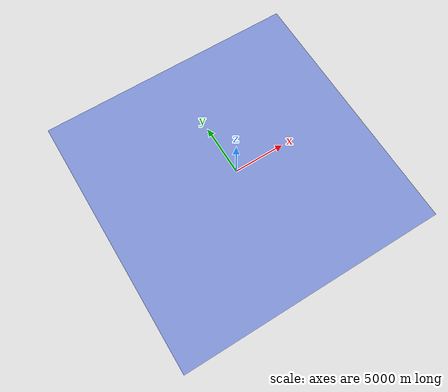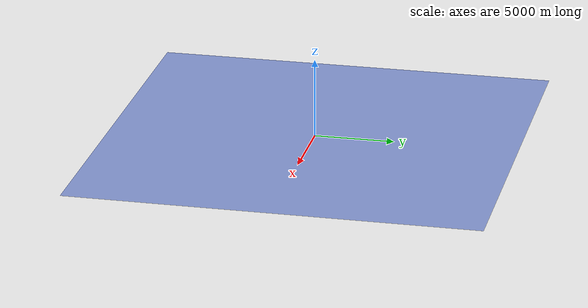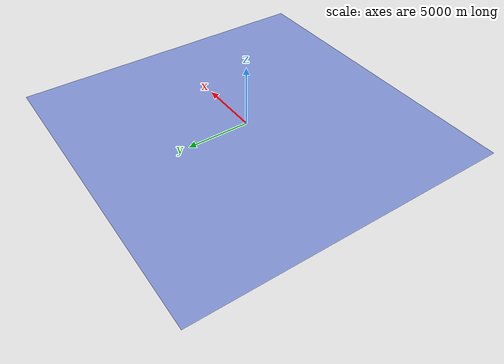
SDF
<?xml version="1.0" ?>
<sdf version="1.5">
  <world name="default">
    <gui>
      <camera name="user_camera">
        <!-- for surface starts -->

        <!-- for submerged starts -->
       <pose>3.1189 -56.3927 -47.135 0 .8629 1.638337</pose>
      </camera>
    </gui>

    <scene>
      <ambient> 0.35 0.35 0.35 1.0</ambient>
      <shadows>1</shadows>
    </scene>

    <physics name="sentry_50Hz" default="true" type="ode">
      <max_step_size>0.02</max_step_size>
      <real_time_factor>1.0</real_time_factor>
      <real_time_update_rate>3000</real_time_update_rate>
    </physics>

    <!-- Origin near Woods Hole -->
    <!-- Only matters if simulation is using GPS -->
    <spherical_coordinates>
      <latitude_deg>41.5000000</latitude_deg>
      <longitude_deg>-70.55</longitude_deg>
    </spherical_coordinates>

    <light type="directional" name="sun1">
      <pose>50 0 150 0 0 0</pose>
      <diffuse>1 1 1 1</diffuse>
      <specular>.1 .1 .1 1</specular>
      <direction>0.3 0.3 -1</direction>
      <cast_shadows>true</cast_shadows>
    </light>

    <model name="ceiling_plane">
      <static>true</static>
      <pose>0 0 0 0 0 0</pose>
      <link name="link">
        <collision name="collision">
          <geometry>
            <box>
              <size>25600 25600 .1</size>
            </box>
          </geometry>
          <contact>
            <collide_without_contact>1</collide_without_contact>
          </contact>
        </collision>
        <visual name="visual">
          <cast_shadows>false</cast_shadows>
          <transparency>0.5</transparency>
          <geometry>
            <box>
              <size>25600 25600 .1</size>
            </box>
          </geometry>
          <material>
            <script>
              <uri>file://media/materials/scripts/gazebo.material</uri>
              <name>Gazebo/BlueTransparent</name>
            </script>
          </material>
        </visual>
      </link>
    </model>
  </world>
</sdf>
